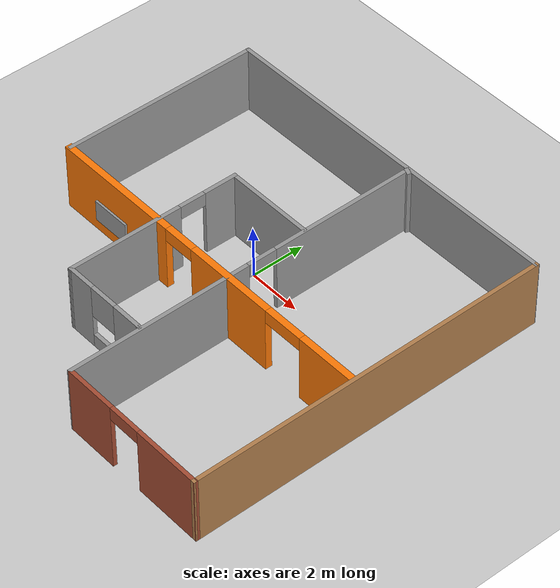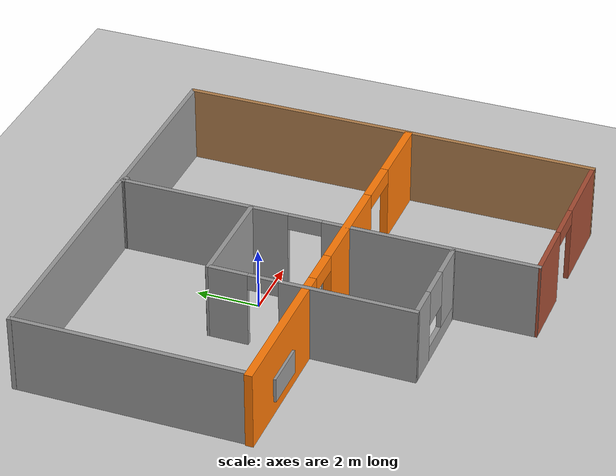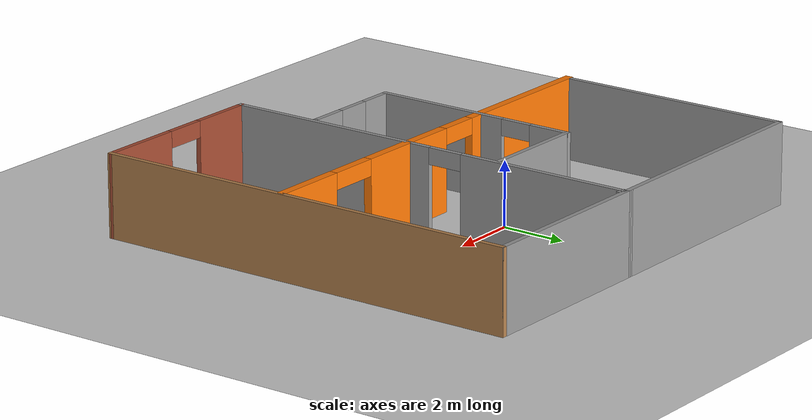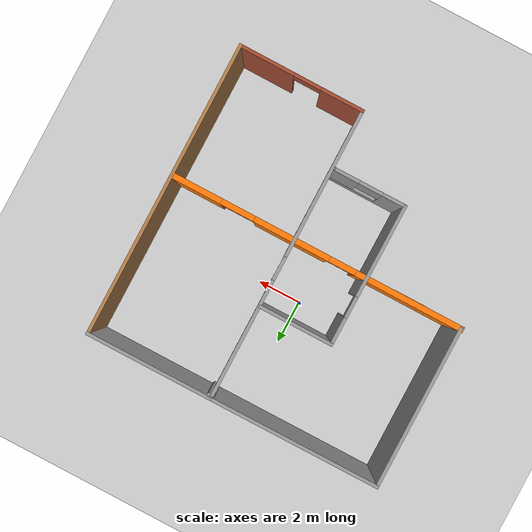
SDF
<sdf version="1.6">
 <world name="default">
  <light name="sun" type="directional">
   <pose>0 0 10 0 -0 0</pose>
   <diffuse>0.8 0.8 0.8 1</diffuse>
   <specular>0.1 0.1 0.1 1</specular>
   <attenuation>
    <range>1000</range>
    <constant>0.9</constant>
    <linear>0.01</linear>
    <quadratic>0.001</quadratic>
   </attenuation>
   <direction>-0.5 0.5 -1</direction>
  </light>
  <model name="ground_plane">
   <static>1</static>
   <link name="link">
    <collision name="collision">
     <geometry><plane><normal>0 0 1</normal><size>100 100</size></plane></geometry>
     <surface><friction><ode><mu>100</mu><mu2>50</mu2></ode></friction></surface>
    </collision>
    <visual name="visual">
     <cast_shadows>0</cast_shadows>
     <geometry><plane><normal>0 0 1</normal><size>100 100</size></plane></geometry>
     <material>
      <script><uri>file://media/materials/scripts/gazebo.material</uri><name>Gazebo/Grey</name></script>
     </material>
    </visual>
   </link>
  </model>
  <gravity>0 0 -9.8</gravity>
  <magnetic_field>6e-06 2.3e-05 -4.2e-05</magnetic_field>
  <atmosphere type="adiabatic"/>
  <physics name="default_physics" default="0" type="ode">
   <max_step_size>0.001</max_step_size>
   <real_time_factor>1</real_time_factor>
   <real_time_update_rate>1000</real_time_update_rate>
  </physics>
  <scene><ambient>0.4 0.4 0.4 1</ambient><background>0.7 0.7 0.7 1</background><shadows>1</shadows></scene>
  <spherical_coordinates>
   <surface_model>EARTH_WGS84</surface_model>
   <latitude_deg>0</latitude_deg>
   <longitude_deg>0</longitude_deg>
   <elevation>0</elevation>
   <heading_deg>0</heading_deg>
  </spherical_coordinates>
  <model name="UfficioBase">
   <pose>0.459129 -1.57965 0 0 -0 0</pose>
   <link name="Wall_0">
    <collision name="Wall_0_Collision">
     <geometry><box><size>7.77861 0.15 2.5</size></box></geometry>
     <pose>0 0 1.25 0 -0 0</pose>
    </collision>
    <visual name="Wall_0_Visual">
     <pose>0 0 1.25 0 -0 0</pose>
     <geometry><box><size>7.77861 0.15 2.5</size></box></geometry>
     <material>
      <script><uri>file://media/materials/scripts/gazebo.material</uri><name>Gazebo/Grey</name></script>
      <ambient>1 1 1 1</ambient>
     </material>
    </visual>
    <pose>-2.90624 6.69915 0 0 -0 0.002248</pose>
   </link>
   <link name="Wall_1">
    <collision name="Wall_1_Collision">
     <geometry><box><size>6.00559 0.15 2.5</size></box></geometry>
     <pose>0 0 1.25 0 -0 0</pose>
    </collision>
    <visual name="Wall_1_Visual">
     <pose>0 0 1.25 0 -0 0</pose>
     <geometry><box><size>6.00559 0.15 2.5</size></box></geometry>
     <material>
      <script><uri>file://media/materials/scripts/gazebo.material</uri><name>Gazebo/Grey</name></script>
      <ambient>1 1 1 1</ambient>
     </material>
    </visual>
    <pose>3.83014 6.70755 0 0 0 -5.9e-05</pose>
   </link>
   <link name="Wall_11">
    <collision name="Wall_11_Collision">
     <geometry><box><size>3.4532 0.15 2.5</size></box></geometry>
     <pose>0 0 1.25 0 -0 0</pose>
    </collision>
    <visual name="Wall_11_Visual">
     <pose>0 0 1.25 0 -0 0</pose>
     <geometry><box><size>3.4532 0.15 2.5</size></box></geometry>
     <material>
      <script><uri>file://media/materials/scripts/gazebo.material</uri><name>Gazebo/Grey</name></script>
      <ambient>1 1 1 1</ambient>
     </material>
    </visual>
    <pose>-0.659815 2.39779 0 0 -0 3.14028</pose>
   </link>
   <link name="Wall_12">
    <pose>-2.32127 -0.818911 0 0 0 -1.57386</pose>
    <visual name="Wall_12_Visual_0">
     <pose>-2.6363 0 1.25 0 -0 0</pose>
     <geometry><box><size>1.32378 0.15 2.5</size></box></geometry>
     <material>
      <script><uri>file://media/materials/scripts/gazebo.material</uri><name>Gazebo/Grey</name></script>
      <ambient>1 1 1 1</ambient>
     </material>
    </visual>
    <collision name="Wall_12_Collision_0">
     <geometry><box><size>1.32378 0.15 2.5</size></box></geometry>
     <pose>-2.6363 0 1.25 0 -0 0</pose>
    </collision>
    <visual name="Wall_12_Visual_1">
     <pose>1.1508 0 1.25 0 -0 0</pose>
     <geometry><box><size>4.29479 0.15 2.5</size></box></geometry>
     <material>
      <script><uri>file://media/materials/scripts/gazebo.material</uri><name>Gazebo/Grey</name></script>
      <ambient>1 1 1 1</ambient>
     </material>
    </visual>
    <collision name="Wall_12_Collision_1">
     <geometry><box><size>4.29479 0.15 2.5</size></box></geometry>
     <pose>1.1508 0 1.25 0 -0 0</pose>
    </collision>
    <visual name="Wall_12_Visual_2">
     <pose>-1.4855 0 2.25 0 -0 0</pose>
     <geometry><box><size>0.977819 0.15 0.5</size></box></geometry>
     <material>
      <script><uri>file://media/materials/scripts/gazebo.material</uri><name>Gazebo/Grey</name></script>
      <ambient>1 1 1 1</ambient>
     </material>
    </visual>
    <collision name="Wall_12_Collision_2">
     <geometry><box><size>0.977819 0.15 0.5</size></box></geometry>
     <pose>-1.4855 0 2.25 0 -0 0</pose>
    </collision>
   </link>
   <link name="Wall_13">
    <pose>-0.672965 -4.04426 0 0 0 -0.001309</pose>
    <visual name="Wall_13_Visual_0">
     <pose>-1.16681 0 1.25 0 -0 0</pose>
     <geometry><box><size>1.11958 0.15 2.5</size></box></geometry>
     <material>
      <script><uri>file://media/materials/scripts/gazebo.material</uri><name>Gazebo/Grey</name></script>
      <ambient>1 1 1 1</ambient>
     </material>
    </visual>
    <collision name="Wall_13_Collision_0">
     <geometry><box><size>1.11958 0.15 2.5</size></box></geometry>
     <pose>-1.16681 0 1.25 0 -0 0</pose>
    </collision>
    <visual name="Wall_13_Visual_1">
     <pose>0.559788 0 0.25 0 -0 0</pose>
     <geometry><box><size>2.33362 0.15 0.5</size></box></geometry>
     <material>
      <script><uri>file://media/materials/scripts/gazebo.material</uri><name>Gazebo/Grey</name></script>
      <ambient>1 1 1 1</ambient>
     </material>
    </visual>
    <collision name="Wall_13_Collision_1">
     <geometry><box><size>2.33362 0.15 0.5</size></box></geometry>
     <pose>0.559788 0 0.25 0 -0 0</pose>
    </collision>
    <visual name="Wall_13_Visual_2">
     <pose>1.09843 0 1.5 0 -0 0</pose>
     <geometry><box><size>1.25634 0.15 2</size></box></geometry>
     <material>
      <script><uri>file://media/materials/scripts/gazebo.material</uri><name>Gazebo/Grey</name></script>
      <ambient>1 1 1 1</ambient>
     </material>
    </visual>
    <collision name="Wall_13_Collision_2">
     <geometry><box><size>1.25634 0.15 2</size></box></geometry>
     <pose>1.09843 0 1.5 0 -0 0</pose>
    </collision>
    <visual name="Wall_13_Visual_3">
     <pose>-0.068381 0 1.9 0 -0 0</pose>
     <geometry><box><size>1.07728 0.15 1.2</size></box></geometry>
     <material>
      <script><uri>file://media/materials/scripts/gazebo.material</uri><name>Gazebo/Grey</name></script>
      <ambient>1 1 1 1</ambient>
     </material>
    </visual>
    <collision name="Wall_13_Collision_3">
     <geometry><box><size>1.07728 0.15 1.2</size></box></geometry>
     <pose>-0.068381 0 1.9 0 -0 0</pose>
    </collision>
   </link>
   <link name="Wall_14">
    <collision name="Wall_14_Collision">
     <geometry><box><size>0.15 0.15 2.5</size></box></geometry>
     <pose>0 0 1.25 0 -0 0</pose>
    </collision>
    <visual name="Wall_14_Visual">
     <pose>0 0 1.25 0 -0 0</pose>
     <geometry><box><size>0.15 0.15 2.5</size></box></geometry>
     <material>
      <script><uri>file://media/materials/scripts/gazebo.material</uri><name>Gazebo/Grey</name></script>
      <ambient>1 1 1 1</ambient>
     </material>
    </visual>
    <pose>0.972057 -4.04642 0 0 -0 0</pose>
   </link>
   <link name="Wall_2">
    <collision name="Wall_2_Collision">
     <geometry><box><size>13.5653 0.15 2.5</size></box></geometry>
     <pose>0 0 1.25 0 -0 0</pose>
    </collision>
    <visual name="Wall_2_Visual">
     <pose>0 0 1.25 0 -0 0</pose>
     <geometry><box><size>13.5653 0.15 2.5</size></box></geometry>
     <material>
      <script><uri>file://media/materials/scripts/gazebo.material</uri><name>Gazebo/Wood</name></script>
      <ambient>0.996078 0.47451 0.0196078 1</ambient>
     </material>
    </visual>
    <pose>6.76143 -0.00012 0 0 0 -1.57028</pose>
   </link>
   <link name="Wall_3">
    <pose>3.91193 -6.69712 0 0 -0 3.13791</pose>
    <visual name="Wall_3_Visual_0">
     <pose>-1.63283 0 1.25 0 -0 0</pose>
     <geometry><box><size>2.59043 0.15 2.5</size></box></geometry>
     <material>
      <script><uri>file://media/materials/scripts/gazebo.material</uri><name>Gazebo/Bricks</name></script>
      <ambient>0.996078 0.47451 0.0196078 1</ambient>
     </material>
    </visual>
    <collision name="Wall_3_Collision_0">
     <geometry><box><size>2.59043 0.15 2.5</size></box></geometry>
     <pose>-1.63283 0 1.25 0 -0 0</pose>
    </collision>
    <visual name="Wall_3_Visual_1">
     <pose>1.91963 0 1.25 0 -0 0</pose>
     <geometry><box><size>2.01683 0.15 2.5</size></box></geometry>
     <material>
      <script><uri>file://media/materials/scripts/gazebo.material</uri><name>Gazebo/Bricks</name></script>
      <ambient>0.996078 0.47451 0.0196078 1</ambient>
     </material>
    </visual>
    <collision name="Wall_3_Collision_1">
     <geometry><box><size>2.01683 0.15 2.5</size></box></geometry>
     <pose>1.91963 0 1.25 0 -0 0</pose>
    </collision>
    <visual name="Wall_3_Visual_2">
     <pose>0.286797 0 2.25 0 -0 0</pose>
     <geometry><box><size>1.24883 0.15 0.5</size></box></geometry>
     <material>
      <script><uri>file://media/materials/scripts/gazebo.material</uri><name>Gazebo/Bricks</name></script>
      <ambient>0.996078 0.47451 0.0196078 1</ambient>
     </material>
    </visual>
    <collision name="Wall_3_Collision_2">
     <geometry><box><size>1.24883 0.15 0.5</size></box></geometry>
     <pose>0.286797 0 2.25 0 -0 0</pose>
    </collision>
   </link>
   <link name="Wall_4">
    <pose>1.04883 -0.028808 0 0 -0 1.57231</pose>
    <visual name="Wall_4_Visual_0">
     <pose>-3.30138 0 1.25 0 -0 0</pose>
     <geometry><box><size>6.86261 0.15 2.5</size></box></geometry>
     <material>
      <script><uri>file://media/materials/scripts/gazebo.material</uri><name>Gazebo/Grey</name></script>
      <ambient>1 1 1 1</ambient>
     </material>
    </visual>
    <collision name="Wall_4_Collision_0">
     <geometry><box><size>6.86261 0.15 2.5</size></box></geometry>
     <pose>-3.30138 0 1.25 0 -0 0</pose>
    </collision>
    <visual name="Wall_4_Visual_1">
     <pose>3.97425 0 1.25 0 -0 0</pose>
     <geometry><box><size>5.51685 0.15 2.5</size></box></geometry>
     <material>
      <script><uri>file://media/materials/scripts/gazebo.material</uri><name>Gazebo/Grey</name></script>
      <ambient>1 1 1 1</ambient>
     </material>
    </visual>
    <collision name="Wall_4_Collision_1">
     <geometry><box><size>5.51685 0.15 2.5</size></box></geometry>
     <pose>3.97425 0 1.25 0 -0 0</pose>
    </collision>
    <visual name="Wall_4_Visual_2">
     <pose>0.672878 0 2.25 0 -0 0</pose>
     <geometry><box><size>1.0859 0.15 0.5</size></box></geometry>
     <material>
      <script><uri>file://media/materials/scripts/gazebo.material</uri><name>Gazebo/Grey</name></script>
      <ambient>1 1 1 1</ambient>
     </material>
    </visual>
    <collision name="Wall_4_Collision_2">
     <geometry><box><size>1.0859 0.15 0.5</size></box></geometry>
     <pose>0.672878 0 2.25 0 -0 0</pose>
    </collision>
   </link>
   <link name="Wall_5">
    <collision name="Wall_5_Collision">
     <geometry><box><size>0.15 0.15 2.5</size></box></geometry>
     <pose>0 0 1.25 0 -0 0</pose>
    </collision>
    <visual name="Wall_5_Visual">
     <pose>0 0 1.25 0 -0 0</pose>
     <geometry><box><size>0.15 0.15 2.5</size></box></geometry>
     <material>
      <script><uri>file://media/materials/scripts/gazebo.material</uri><name>Gazebo/Grey</name></script>
      <ambient>1 1 1 1</ambient>
     </material>
    </visual>
    <pose>1.03873 6.63398 0 0 -0 0</pose>
   </link>
   <link name="Wall_6">
    <collision name="Wall_6_Collision">
     <geometry><box><size>0.286845 0.15 2.5</size></box></geometry>
     <pose>0 0 1.25 0 -0 0</pose>
    </collision>
    <visual name="Wall_6_Visual">
     <pose>0 0 1.25 0 -0 0</pose>
     <geometry><box><size>0.286845 0.15 2.5</size></box></geometry>
     <material>
      <script><uri>file://media/materials/scripts/gazebo.material</uri><name>Gazebo/Grey</name></script>
      <ambient>1 1 1 1</ambient>
     </material>
    </visual>
    <pose>1.1034 6.6116 0 0 0 -0.333109</pose>
   </link>
   <link name="Wall_8">
    <collision name="Wall_8_Collision">
     <geometry><box><size>7.5 0.15 2.5</size></box></geometry>
     <pose>0 0 1.25 0 -0 0</pose>
    </collision>
    <visual name="Wall_8_Visual">
     <pose>0 0 1.25 0 -0 0</pose>
     <geometry><box><size>7.5 0.15 2.5</size></box></geometry>
     <material>
      <script><uri>file://media/materials/scripts/gazebo.material</uri><name>Gazebo/Grey</name></script>
      <ambient>1 1 1 1</ambient>
     </material>
    </visual>
    <pose>-6.71494 3.00962 0 0 0 -1.57083</pose>
   </link>
   <link name="Wall_9">
    <pose>-0.034568 -0.67462 0 0 0 -0.001347</pose>
    <visual name="Wall_9_Visual_0">
     <pose>-4.29269 0 1.25 0 -0 0</pose>
     <geometry><box><size>5.02563 0.25 2.5</size></box></geometry>
     <material>
      <script><uri>file://media/materials/scripts/gazebo.material</uri><name>Gazebo/Grey</name></script>
      <ambient>0.996078 0.47451 0.0196078 1</ambient>
     </material>
    </visual>
    <collision name="Wall_9_Collision_0">
     <geometry><box><size>5.02563 0.25 2.5</size></box></geometry>
     <pose>-4.29269 0 1.25 0 -0 0</pose>
    </collision>
    <visual name="Wall_9_Visual_1">
     <pose>1.1939 0 1.25 0 -0 0</pose>
     <geometry><box><size>3.49803 0.25 2.5</size></box></geometry>
     <material>
      <script><uri>file://media/materials/scripts/gazebo.material</uri><name>Gazebo/Grey</name></script>
      <ambient>0.996078 0.47451 0.0196078 1</ambient>
     </material>
    </visual>
    <collision name="Wall_9_Collision_1">
     <geometry><box><size>3.49803 0.25 2.5</size></box></geometry>
     <pose>1.1939 0 1.25 0 -0 0</pose>
    </collision>
    <visual name="Wall_9_Visual_2">
     <pose>5.64621 0 1.25 0 -0 0</pose>
     <geometry><box><size>2.31859 0.25 2.5</size></box></geometry>
     <material>
      <script><uri>file://media/materials/scripts/gazebo.material</uri><name>Gazebo/Grey</name></script>
      <ambient>0.996078 0.47451 0.0196078 1</ambient>
     </material>
    </visual>
    <collision name="Wall_9_Collision_2">
     <geometry><box><size>2.31859 0.25 2.5</size></box></geometry>
     <pose>5.64621 0 1.25 0 -0 0</pose>
    </collision>
    <visual name="Wall_9_Visual_3">
     <pose>-1.16749 0 2.25 0 -0 0</pose>
     <geometry><box><size>1.22477 0.25 0.5</size></box></geometry>
     <material>
      <script><uri>file://media/materials/scripts/gazebo.material</uri><name>Gazebo/Grey</name></script>
      <ambient>0.996078 0.47451 0.0196078 1</ambient>
     </material>
    </visual>
    <collision name="Wall_9_Collision_3">
     <geometry><box><size>1.22477 0.25 0.5</size></box></geometry>
     <pose>-1.16749 0 2.25 0 -0 0</pose>
    </collision>
    <visual name="Wall_9_Visual_4">
     <pose>3.71492 0 2.25 0 -0 0</pose>
     <geometry><box><size>1.544 0.25 0.5</size></box></geometry>
     <material>
      <script><uri>file://media/materials/scripts/gazebo.material</uri><name>Gazebo/Grey</name></script>
      <ambient>0.996078 0.47451 0.0196078 1</ambient>
     </material>
    </visual>
    <collision name="Wall_9_Collision_4">
     <geometry><box><size>1.544 0.25 0.5</size></box></geometry>
     <pose>3.71492 0 2.25 0 -0 0</pose>
    </collision>
   </link>
   <link name="Window_0">
    <collision name="Window_0_Collision">
     <geometry><box><size>1.5 0.17 0.8</size></box></geometry>
     <pose>0 0 0.4 0 -0 0</pose>
    </collision>
    <visual name="Window_0_Visual">
     <pose>0 0 0.4 0 -0 0</pose>
     <geometry><box><size>1.5 0.17 0.8</size></box></geometry>
     <material>
      <script><uri>file://media/materials/scripts/gazebo.material</uri><name>Gazebo/Grey</name></script>
     </material>
    </visual>
    <pose>-4.53607 -0.79162 0.5 0 -0 0</pose>
   </link>
   <static>1</static>
  </model>
 </world>
</sdf>
